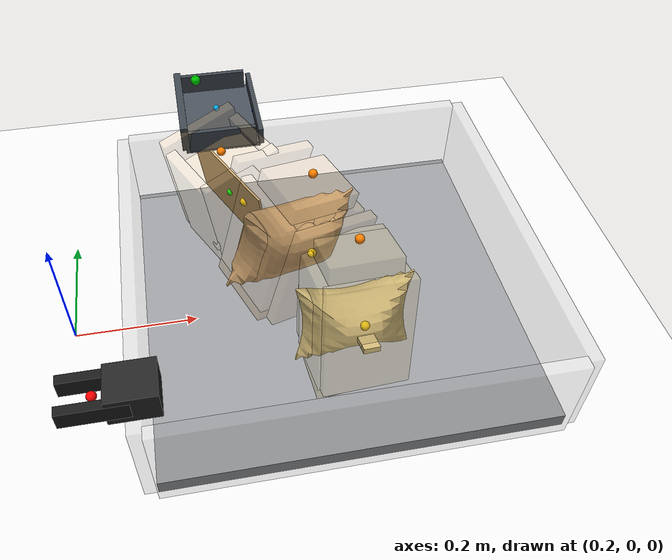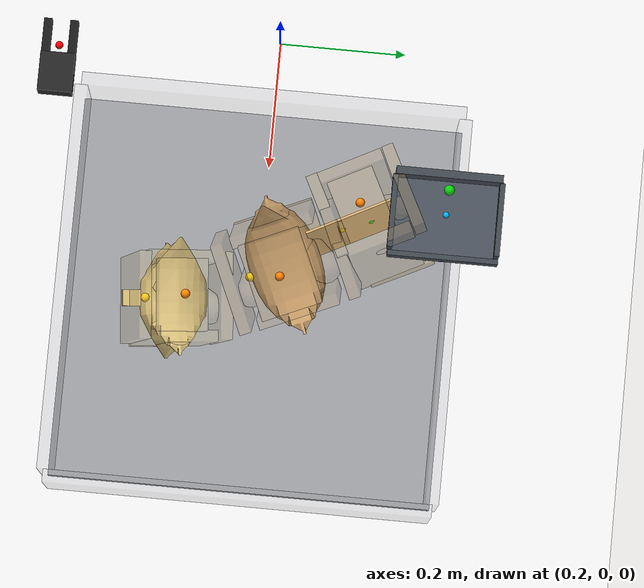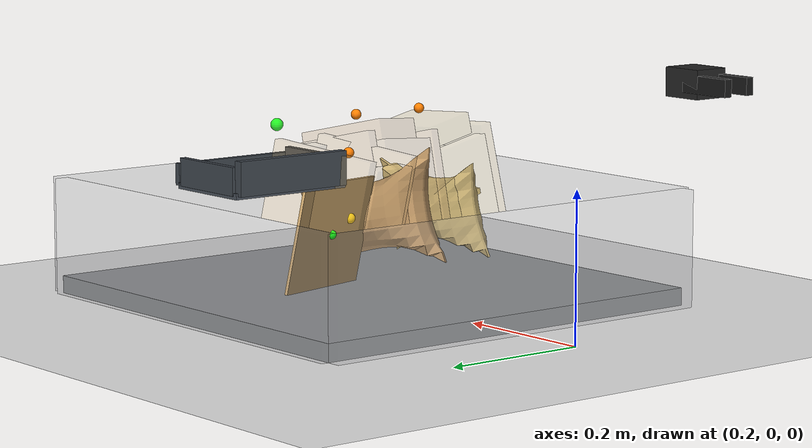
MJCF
<mujoco model="regular_well_filled_side_exposed_ep0_try0">
  <compiler angle="radian" coordinate="local" inertiafromgeom="true" meshdir="D:/Michael/2025/01.Research/01.Parceldetection/16.Pybullet/bullet3-master (1)/bullet3-master/examples/pybullet/examples/DeformableTest/Sackcodex2/object"/>
  <option timestep="0.002" gravity="0 0 -9.81" integrator="implicitfast" iterations="100" tolerance="1e-8"/>
  <size memory="768M" nconmax="12000"/>

  <visual>
    <global azimuth="128" elevation="-20"/>
    <headlight ambient="0.34 0.34 0.34" diffuse="0.78 0.78 0.78" specular="0.15 0.15 0.15"/>
    <rgba haze="0.11 0.13 0.18 1"/>
  </visual>

  <default>
    <geom condim="4" friction="1.15 0.03 0.01" margin="0.003" solimp="0.93 0.98 0.003" solref="0.012 1"/>
    <joint damping="1.2" armature="0.002"/>
    <position kp="2500" forcelimited="true" forcerange="-420 420"/>
    <motor ctrllimited="true"/>
  </default>

  <asset>
    <mesh name="sack_0_visual_mesh" file="sack9.obj" scale="0.0664 0.0664 0.0699"/>
    <mesh name="sack_1_visual_mesh" file="sack6Apply.obj" scale="0.0768 0.0768 0.0818"/>
    <mesh name="sack_2_visual_mesh" file="sack2.obj" scale="0.0694 0.0694 0.0707"/>
  </asset>

  <worldbody>
    <light name="key" pos="0.85 0.15 1.8" dir="-0.2 -0.1 -1" directional="true"/>
    <geom name="floor" type="plane" size="2 2 0.1" rgba="0.93 0.93 0.93 1"/>
    <geom name="work_pad" type="box" pos="0.62 0 0.012" size="0.30 0.30 0.012" rgba="0.60 0.61 0.62 1" friction="1.4 0.05 0.01"/>
    <geom name="corral_front" type="box" pos="0.93 0.00 0.08" size="0.010 0.30 0.08" rgba="0.55 0.55 0.58 0.22" friction="1.0 0.03 0.01"/>
    <geom name="corral_back" type="box" pos="0.31 0.00 0.08" size="0.010 0.30 0.08" rgba="0.55 0.55 0.58 0.18" friction="1.0 0.03 0.01"/>
    <geom name="corral_left" type="box" pos="0.62 0.30 0.08" size="0.30 0.010 0.08" rgba="0.55 0.55 0.58 0.14" friction="1.0 0.03 0.01"/>
    <geom name="corral_right" type="box" pos="0.62 -0.30 0.08" size="0.30 0.010 0.08" rgba="0.55 0.55 0.58 0.14" friction="1.0 0.03 0.01"/>
    <camera name="overview" pos="1.22 0.00 0.92" xyaxes="0 1 0 -0.46 0 0.88"/>

    <body name="gripper_mocap" mocap="true" pos="0.36 -0.33 0.30" quat="0.707107 0 -0.707107 0"/>
    <body name="scoop_mocap" mocap="true" pos="0.42 0.28 0.20" quat="1 0 0 0"/>

    <body name="gripper_ctrl_base" pos="0.36 -0.33 0.30">
      <inertial pos="0 0 0" mass="0.001" diaginertia="1e-6 1e-6 1e-6"/>
      <joint name="gripper_ctrl_x" type="slide" axis="1 0 0" limited="true" range="0.20 1.00"/>
      <body name="gripper_ctrl_y_body">
        <inertial pos="0 0 0" mass="0.001" diaginertia="1e-6 1e-6 1e-6"/>
        <joint name="gripper_ctrl_y" type="slide" axis="0 1 0" limited="true" range="-0.60 0.60"/>
        <body name="gripper_ctrl_z_body">
          <inertial pos="0 0 0" mass="0.001" diaginertia="1e-6 1e-6 1e-6"/>
          <joint name="gripper_ctrl_z" type="slide" axis="0 0 1" limited="true" range="0.04 0.70"/>
          <body name="gripper_ctrl_yaw_body">
            <inertial pos="0 0 0" mass="0.001" diaginertia="1e-6 1e-6 1e-6"/>
            <joint name="gripper_ctrl_yaw" type="hinge" axis="0 0 1" limited="true" range="-3.1416 3.1416"/>
            <body name="gripper_ctrl_pitch_body">
              <inertial pos="0 0 0" mass="0.001" diaginertia="1e-6 1e-6 1e-6"/>
              <joint name="gripper_ctrl_pitch" type="hinge" axis="0 1 0" limited="true" range="-3.1416 3.1416"/>
              <body name="gripper_ctrl_roll_body">
                <inertial pos="0 0 0" mass="0.001" diaginertia="1e-6 1e-6 1e-6"/>
                <joint name="gripper_ctrl_roll" type="hinge" axis="1 0 0" limited="true" range="-3.1416 3.1416"/>
              </body>
            </body>
          </body>
        </body>
      </body>
    </body>

    <body name="scoop_ctrl_base" pos="0.42 0.28 0.20">
      <inertial pos="0 0 0" mass="0.001" diaginertia="1e-6 1e-6 1e-6"/>
      <joint name="scoop_ctrl_x" type="slide" axis="1 0 0" limited="true" range="0.20 1.00"/>
      <body name="scoop_ctrl_y_body">
        <inertial pos="0 0 0" mass="0.001" diaginertia="1e-6 1e-6 1e-6"/>
        <joint name="scoop_ctrl_y" type="slide" axis="0 1 0" limited="true" range="-0.60 0.60"/>
        <body name="scoop_ctrl_z_body">
          <inertial pos="0 0 0" mass="0.001" diaginertia="1e-6 1e-6 1e-6"/>
          <joint name="scoop_ctrl_z" type="slide" axis="0 0 1" limited="true" range="0.04 0.70"/>
          <body name="scoop_ctrl_yaw_body">
            <inertial pos="0 0 0" mass="0.001" diaginertia="1e-6 1e-6 1e-6"/>
            <joint name="scoop_ctrl_yaw" type="hinge" axis="0 0 1" limited="true" range="-3.1416 3.1416"/>
            <body name="scoop_ctrl_pitch_body">
              <inertial pos="0 0 0" mass="0.001" diaginertia="1e-6 1e-6 1e-6"/>
              <joint name="scoop_ctrl_pitch" type="hinge" axis="0 1 0" limited="true" range="-3.1416 3.1416"/>
              <body name="scoop_ctrl_roll_body">
                <inertial pos="0 0 0" mass="0.001" diaginertia="1e-6 1e-6 1e-6"/>
                <joint name="scoop_ctrl_roll" type="hinge" axis="1 0 0" limited="true" range="-3.1416 3.1416"/>
              </body>
            </body>
          </body>
        </body>
      </body>
    </body>

    <body name="gripper_tool" pos="0.36 -0.33 0.30" quat="0.707107 0 -0.707107 0">
      <freejoint name="gripper_tool_free"/>
      <inertial pos="0 0 0.04" mass="0.08" diaginertia="0.0002 0.0002 0.0002"/>
      <geom name="gripper_palm" type="box" pos="0 0 0.030" size="0.020 0.026 0.030" rgba="0.14 0.14 0.14 1"/>
      <body name="left_finger_body" pos="0 0 0.072">
        <joint name="left_finger_slide" type="slide" axis="0 1 0" limited="true" range="0.010 0.040" damping="12"/>
        <geom name="left_finger_geom" type="box" pos="0 0.020 0" size="0.012 0.006 0.040" rgba="0.10 0.10 0.10 1" friction="2.2 0.05 0.01"/>
      </body>
      <body name="right_finger_body" pos="0 0 0.072">
        <joint name="right_finger_slide" type="slide" axis="0 -1 0" limited="true" range="0.010 0.040" damping="12"/>
        <geom name="right_finger_geom" type="box" pos="0 -0.020 0" size="0.012 0.006 0.040" rgba="0.10 0.10 0.10 1" friction="2.2 0.05 0.01"/>
      </body>
      <site name="gripper_pinch_site" pos="0 0 0.074" size="0.006" rgba="1 0 0 1"/>
    </body>

    <body name="scoop_tool" pos="0.42 0.28 0.20" quat="1 0 0 0">
      <freejoint name="scoop_tool_free"/>
      <inertial pos="0 0 0.02" mass="0.10" diaginertia="0.0003 0.0003 0.0003"/>
      <geom name="scoop_plate" type="box" pos="0.062 0 0" size="0.062 0.085 0.004" rgba="0.28 0.31 0.35 1" friction="1.7 0.05 0.01"/>
      <geom name="scoop_lip" type="box" pos="0.126 0 0.014" size="0.004 0.085 0.014" rgba="0.24 0.27 0.30 1" friction="1.7 0.05 0.01"/>
      <geom name="scoop_left_rail" type="box" pos="0.062 0.082 0.018" size="0.056 0.004 0.018" rgba="0.24 0.27 0.30 1"/>
      <geom name="scoop_right_rail" type="box" pos="0.062 -0.082 0.018" size="0.056 0.004 0.018" rgba="0.24 0.27 0.30 1"/>
      <geom name="scoop_backstop" type="box" pos="0.000 0 0.022" size="0.006 0.082 0.022" rgba="0.24 0.27 0.30 1"/>
      <site name="scoop_tip_site" pos="0.126 0 0.005" size="0.005" rgba="0 0 1 1"/>
      <site name="scoop_center_site" pos="0.060 0 0.020" size="0.005" rgba="0 0.7 1 1"/>
      <site name="score_overlay_site" pos="0.030 0 0.080" size="0.008" rgba="0 1 0 0.8"/>
    </body>

    <body name="sack_0" pos="0.6346 -0.1266 0.1124" euler="-0.1973 0.0423 0.0974">
      <freejoint name="sack_0_free"/>

      <geom name="sack_0_visual" type="mesh" mesh="sack_0_visual_mesh" rgba="0.840 0.740 0.480 0.92" contype="0" conaffinity="0"/>
      <site name="sack_0_center_site" pos="0 0 0.000" size="0.006" rgba="0 1 0 1"/>
      <site name="sack_0_top_site" pos="0 -0.0060 0.1414" size="0.007" rgba="1 0.5 0 1"/>
      <site name="sack_0_side_site" pos="0.0000 -0.0477 0.018" size="0.007" rgba="1 0.8 0 1"/>

      <geom name="sack_0_core_geom" type="ellipsoid" pos="0 0 0.0059" size="0.0497 0.0411 0.0877" mass="1.2055" rgba="0.840 0.740 0.480 0.12" friction="1.0 0.03 0.01"/>
      <geom name="sack_0_core_front" type="capsule" fromto="-0.0200 0 -0.0200 0.0450 0 0.0600" size="0.0304" mass="0.2870" rgba="0.840 0.740 0.480 0.10"/>
      <geom name="sack_0_core_left" type="capsule" fromto="-0.008 0.0276 -0.010 0.018 0.0456 0.060" size="0.0241" mass="0.5166" rgba="0.840 0.740 0.480 0.10"/>
      <geom name="sack_0_core_right" type="capsule" fromto="-0.006 -0.0276 -0.008 0.020 -0.0476 0.054" size="0.0221" mass="0.5166" rgba="0.840 0.740 0.480 0.10"/>

      <body name="sack_0_bottom_support_proxy_body" pos="0 -0.0007 -0.0973">
        <joint name="sack_0_bottom_x" type="slide" axis="1 0 0" limited="true" range="-0.012 0.012" damping="18" stiffness="472.2"/>
        <joint name="sack_0_bottom_y" type="slide" axis="0 1 0" limited="true" range="-0.012 0.012" damping="18" stiffness="472.2"/>
        <joint name="sack_0_bottom_z" type="slide" axis="0 0 1" limited="true" range="-0.008 0.020" damping="24" stiffness="581.5"/>
        <geom name="sack_0_bottom_support_proxy" type="box" size="0.0713 0.0537 0.0100" mass="0.2296" rgba="0.840 0.740 0.480 0.34" friction="1.55 0.05 0.01"/>
      </body>

      <body name="sack_0_top_grasp_proxy_body" pos="0.0000 -0.0060 0.1114">
        <joint name="sack_0_top_x" type="slide" axis="1 0 0" limited="true" range="-0.018 0.018" damping="12" stiffness="181.4"/>
        <joint name="sack_0_top_y" type="slide" axis="0 1 0" limited="true" range="-0.018 0.018" damping="12" stiffness="181.4"/>
        <joint name="sack_0_top_z" type="slide" axis="0 0 1" limited="true" range="-0.040 0.010" damping="14" stiffness="134.1"/>
        <geom name="sack_0_top_grasp_proxy" type="box" size="0.0553 0.0377 0.0150" mass="0.1722" rgba="0.840 0.740 0.480 0.26" friction="2.2 0.05 0.01"/>
      </body>

      <body name="sack_0_left_side_proxy_body" pos="0 0.0653 0.010">
        <joint name="sack_0_left_side_slide" type="slide" axis="0 -1 0" limited="true" range="-0.028 0.016" damping="16" stiffness="237.8"/>
        <geom name="sack_0_left_side_proxy" type="box" size="0.0673 0.0090 0.0953" mass="0.1722" rgba="0.840 0.740 0.480 0.24"/>
      </body>

      <body name="sack_0_right_side_proxy_body" pos="0 -0.0613 0.010">
        <joint name="sack_0_right_side_slide" type="slide" axis="0 1 0" limited="true" range="-0.028 0.016" damping="16" stiffness="220.5"/>
        <geom name="sack_0_right_side_proxy" type="box" size="0.0673 0.0090 0.0953" mass="0.1722" rgba="0.840 0.740 0.480 0.24"/>
      </body>

      <body name="sack_0_front_proxy_body" pos="0.0613 0 0.000">
        <joint name="sack_0_front_slide" type="slide" axis="-1 0 0" limited="true" range="-0.022 0.012" damping="15" stiffness="226.1"/>
        <geom name="sack_0_front_support_proxy" type="box" size="0.0090 0.0537 0.0933" mass="0.1435" rgba="0.840 0.740 0.480 0.22"/>
      </body>

      <body name="sack_0_back_proxy_body" pos="-0.0613 0 0.000">
        <joint name="sack_0_back_slide" type="slide" axis="1 0 0" limited="true" range="-0.022 0.012" damping="15" stiffness="208.7"/>
        <geom name="sack_0_back_support_proxy" type="box" size="0.0090 0.0537 0.0933" mass="0.1435" rgba="0.840 0.740 0.480 0.22"/>
      </body>

      <body name="sack_0_shape_proxy_body" pos="0.0000 -0.0196 0.0359">
        <joint name="sack_0_bulge_y" type="slide" axis="0 1 0" limited="true" range="-0.020 0.020" damping="8" stiffness="91.9"/>
        <joint name="sack_0_bulge_z" type="slide" axis="0 0 1" limited="true" range="-0.014 0.028" damping="8" stiffness="93.9"/>
        <geom name="sack_0_shape_proxy" type="ellipsoid" size="0.0201 0.0162 0.0261" mass="0.1148" rgba="0.840 0.740 0.480 0.28"/>
      </body>
    </body>

    <body name="sack_1" pos="0.5661 0.0423 0.1248" euler="0.0104 0.2475 0.4091">
      <freejoint name="sack_1_free"/>

      <geom name="sack_1_visual" type="mesh" mesh="sack_1_visual_mesh" rgba="0.760 0.600 0.400 0.92" contype="0" conaffinity="0"/>
      <site name="sack_1_center_site" pos="0 0 0.000" size="0.006" rgba="0 1 0 1"/>
      <site name="sack_1_top_site" pos="0 -0.0060 0.1383" size="0.007" rgba="1 0.5 0 1"/>
      <site name="sack_1_side_site" pos="0.0000 -0.0582 0.018" size="0.007" rgba="1 0.8 0 1"/>

      <geom name="sack_1_core_geom" type="ellipsoid" pos="0 0 0.0059" size="0.0450 0.0354 0.0792" mass="0.8047" rgba="0.760 0.600 0.400 0.12" friction="1.0 0.03 0.01"/>
      <geom name="sack_1_core_front" type="capsule" fromto="-0.0200 0 -0.0200 0.0450 0 0.0600" size="0.0308" mass="0.1916" rgba="0.760 0.600 0.400 0.10"/>
      <geom name="sack_1_core_left" type="capsule" fromto="-0.008 0.0420 -0.010 0.018 0.0600 0.060" size="0.0242" mass="0.3449" rgba="0.760 0.600 0.400 0.10"/>
      <geom name="sack_1_core_right" type="capsule" fromto="-0.006 -0.0420 -0.008 0.020 -0.0620 0.054" size="0.0223" mass="0.3449" rgba="0.760 0.600 0.400 0.10"/>

      <body name="sack_1_bottom_support_proxy_body" pos="0 -0.0004 -0.0980">
        <joint name="sack_1_bottom_x" type="slide" axis="1 0 0" limited="true" range="-0.012 0.012" damping="18" stiffness="484.1"/>
        <joint name="sack_1_bottom_y" type="slide" axis="0 1 0" limited="true" range="-0.012 0.012" damping="18" stiffness="484.1"/>
        <joint name="sack_1_bottom_z" type="slide" axis="0 0 1" limited="true" range="-0.008 0.020" damping="24" stiffness="596.1"/>
        <geom name="sack_1_bottom_support_proxy" type="box" size="0.0758 0.0642 0.0100" mass="0.1533" rgba="0.760 0.600 0.400 0.34" friction="1.55 0.05 0.01"/>
      </body>

      <body name="sack_1_top_grasp_proxy_body" pos="0.0000 -0.0060 0.1083">
        <joint name="sack_1_top_x" type="slide" axis="1 0 0" limited="true" range="-0.018 0.018" damping="12" stiffness="186.0"/>
        <joint name="sack_1_top_y" type="slide" axis="0 1 0" limited="true" range="-0.018 0.018" damping="12" stiffness="186.0"/>
        <joint name="sack_1_top_z" type="slide" axis="0 0 1" limited="true" range="-0.040 0.010" damping="14" stiffness="138.0"/>
        <geom name="sack_1_top_grasp_proxy" type="box" size="0.0598 0.0482 0.0150" mass="0.1150" rgba="0.760 0.600 0.400 0.26" friction="2.2 0.05 0.01"/>
      </body>

      <body name="sack_1_left_side_proxy_body" pos="0 0.0902 0.010">
        <joint name="sack_1_left_side_slide" type="slide" axis="0 -1 0" limited="true" range="-0.028 0.016" damping="16" stiffness="245.6"/>
        <geom name="sack_1_left_side_proxy" type="box" size="0.0718 0.0090 0.0960" mass="0.1150" rgba="0.760 0.600 0.400 0.24"/>
      </body>

      <body name="sack_1_right_side_proxy_body" pos="0 -0.0862 0.010">
        <joint name="sack_1_right_side_slide" type="slide" axis="0 1 0" limited="true" range="-0.028 0.016" damping="16" stiffness="227.6"/>
        <geom name="sack_1_right_side_proxy" type="box" size="0.0718 0.0090 0.0960" mass="0.1150" rgba="0.760 0.600 0.400 0.24"/>
      </body>

      <body name="sack_1_front_proxy_body" pos="0.0658 0 0.000">
        <joint name="sack_1_front_slide" type="slide" axis="-1 0 0" limited="true" range="-0.022 0.012" damping="15" stiffness="232.0"/>
        <geom name="sack_1_front_support_proxy" type="box" size="0.0090 0.0642 0.0940" mass="0.0958" rgba="0.760 0.600 0.400 0.22"/>
      </body>

      <body name="sack_1_back_proxy_body" pos="-0.0658 0 0.000">
        <joint name="sack_1_back_slide" type="slide" axis="1 0 0" limited="true" range="-0.022 0.012" damping="15" stiffness="214.0"/>
        <geom name="sack_1_back_support_proxy" type="box" size="0.0090 0.0642 0.0940" mass="0.0958" rgba="0.760 0.600 0.400 0.22"/>
      </body>

      <body name="sack_1_shape_proxy_body" pos="0.0000 -0.0340 0.0320">
        <joint name="sack_1_bulge_y" type="slide" axis="0 1 0" limited="true" range="-0.020 0.020" damping="8" stiffness="83.9"/>
        <joint name="sack_1_bulge_z" type="slide" axis="0 0 1" limited="true" range="-0.014 0.028" damping="8" stiffness="88.0"/>
        <geom name="sack_1_shape_proxy" type="ellipsoid" size="0.0202 0.0164 0.0261" mass="0.0766" rgba="0.760 0.600 0.400 0.28"/>
      </body>
    </body>

    <body name="sack_2" pos="0.4847 0.1673 0.1241" euler="0.1350 -0.1193 0.4654">
      <freejoint name="sack_2_free"/>

      <geom name="sack_2_visual" type="mesh" mesh="sack_2_visual_mesh" rgba="0.820 0.670 0.440 0.92" contype="0" conaffinity="0"/>
      <site name="sack_2_center_site" pos="0 0 0.000" size="0.006" rgba="0 1 0 1"/>
      <site name="sack_2_top_site" pos="0 -0.0060 0.1082" size="0.007" rgba="1 0.5 0 1"/>
      <site name="sack_2_side_site" pos="0.0000 -0.0471 0.018" size="0.007" rgba="1 0.8 0 1"/>

      <geom name="sack_2_core_geom" type="ellipsoid" pos="0 0 0.0058" size="0.0448 0.0346 0.0664" mass="0.7108" rgba="0.820 0.670 0.440 0.12" friction="1.0 0.03 0.01"/>
      <geom name="sack_2_core_front" type="capsule" fromto="-0.0200 0 -0.0200 0.0450 0 0.0600" size="0.0293" mass="0.1692" rgba="0.820 0.670 0.440 0.10"/>
      <geom name="sack_2_core_left" type="capsule" fromto="-0.008 0.0274 -0.010 0.018 0.0454 0.060" size="0.0241" mass="0.3046" rgba="0.820 0.670 0.440 0.10"/>
      <geom name="sack_2_core_right" type="capsule" fromto="-0.006 -0.0274 -0.008 0.020 -0.0474 0.054" size="0.0221" mass="0.3046" rgba="0.820 0.670 0.440 0.10"/>

      <body name="sack_2_bottom_support_proxy_body" pos="0 0.0156 -0.1072">
        <joint name="sack_2_bottom_x" type="slide" axis="1 0 0" limited="true" range="-0.012 0.012" damping="18" stiffness="438.8"/>
        <joint name="sack_2_bottom_y" type="slide" axis="0 1 0" limited="true" range="-0.012 0.012" damping="18" stiffness="438.8"/>
        <joint name="sack_2_bottom_z" type="slide" axis="0 0 1" limited="true" range="-0.008 0.020" damping="24" stiffness="540.8"/>
        <geom name="sack_2_bottom_support_proxy" type="box" size="0.0723 0.0531 0.0100" mass="0.1354" rgba="0.820 0.670 0.440 0.34" friction="1.55 0.05 0.01"/>
      </body>

      <body name="sack_2_top_grasp_proxy_body" pos="0.0000 -0.0060 0.0782">
        <joint name="sack_2_top_x" type="slide" axis="1 0 0" limited="true" range="-0.018 0.018" damping="12" stiffness="168.4"/>
        <joint name="sack_2_top_y" type="slide" axis="0 1 0" limited="true" range="-0.018 0.018" damping="12" stiffness="168.4"/>
        <joint name="sack_2_top_z" type="slide" axis="0 0 1" limited="true" range="-0.040 0.010" damping="14" stiffness="122.9"/>
        <geom name="sack_2_top_grasp_proxy" type="box" size="0.0563 0.0371 0.0150" mass="0.1015" rgba="0.820 0.670 0.440 0.26" friction="2.2 0.05 0.01"/>
      </body>

      <body name="sack_2_left_side_proxy_body" pos="0 0.0645 0.010">
        <joint name="sack_2_left_side_slide" type="slide" axis="0 -1 0" limited="true" range="-0.028 0.016" damping="16" stiffness="215.1"/>
        <geom name="sack_2_left_side_proxy" type="box" size="0.0683 0.0090 0.1052" mass="0.1015" rgba="0.820 0.670 0.440 0.24"/>
      </body>

      <body name="sack_2_right_side_proxy_body" pos="0 -0.0605 0.010">
        <joint name="sack_2_right_side_slide" type="slide" axis="0 1 0" limited="true" range="-0.028 0.016" damping="16" stiffness="199.6"/>
        <geom name="sack_2_right_side_proxy" type="box" size="0.0683 0.0090 0.1052" mass="0.1015" rgba="0.820 0.670 0.440 0.24"/>
      </body>

      <body name="sack_2_front_proxy_body" pos="0.0623 0 0.000">
        <joint name="sack_2_front_slide" type="slide" axis="-1 0 0" limited="true" range="-0.022 0.012" damping="15" stiffness="209.4"/>
        <geom name="sack_2_front_support_proxy" type="box" size="0.0090 0.0531 0.1032" mass="0.0846" rgba="0.820 0.670 0.440 0.22"/>
      </body>

      <body name="sack_2_back_proxy_body" pos="-0.0623 0 0.000">
        <joint name="sack_2_back_slide" type="slide" axis="1 0 0" limited="true" range="-0.022 0.012" damping="15" stiffness="193.9"/>
        <geom name="sack_2_back_support_proxy" type="box" size="0.0090 0.0531 0.1032" mass="0.0846" rgba="0.820 0.670 0.440 0.22"/>
      </body>

      <body name="sack_2_shape_proxy_body" pos="0.0000 -0.0194 0.0471">
        <joint name="sack_2_bulge_y" type="slide" axis="0 1 0" limited="true" range="-0.020 0.020" damping="8" stiffness="114.1"/>
        <joint name="sack_2_bulge_z" type="slide" axis="0 0 1" limited="true" range="-0.014 0.028" damping="8" stiffness="110.6"/>
        <geom name="sack_2_shape_proxy" type="ellipsoid" size="0.0201 0.0161 0.0262" mass="0.0677" rgba="0.820 0.670 0.440 0.28"/>
      </body>
    </body>
  </worldbody>

  <equality>
    <weld name="gripper_follow" body1="gripper_mocap" body2="gripper_tool" torquescale="400" solref="0.002 1" solimp="0.99 0.999 0.0001"/>
    <weld name="scoop_follow" body1="scoop_mocap" body2="scoop_tool" torquescale="500" solref="0.002 1" solimp="0.99 0.999 0.0001"/>
  </equality>

  <actuator>
    <position name="gripper_ctrl_x_act" joint="gripper_ctrl_x" ctrlrange="0.20 1.00" kp="3500" forcerange="-300 300"/>
    <position name="gripper_ctrl_y_act" joint="gripper_ctrl_y" ctrlrange="-0.60 0.60" kp="3500" forcerange="-300 300"/>
    <position name="gripper_ctrl_z_act" joint="gripper_ctrl_z" ctrlrange="0.04 0.70" kp="3500" forcerange="-300 300"/>
    <position name="gripper_ctrl_yaw_act" joint="gripper_ctrl_yaw" ctrlrange="-3.1416 3.1416" kp="1800" forcerange="-250 250"/>
    <position name="gripper_ctrl_pitch_act" joint="gripper_ctrl_pitch" ctrlrange="-3.1416 3.1416" kp="1800" forcerange="-250 250"/>
    <position name="gripper_ctrl_roll_act" joint="gripper_ctrl_roll" ctrlrange="-3.1416 3.1416" kp="1800" forcerange="-250 250"/>
    <position name="scoop_ctrl_x_act" joint="scoop_ctrl_x" ctrlrange="0.20 1.00" kp="3500" forcerange="-300 300"/>
    <position name="scoop_ctrl_y_act" joint="scoop_ctrl_y" ctrlrange="-0.60 0.60" kp="3500" forcerange="-300 300"/>
    <position name="scoop_ctrl_z_act" joint="scoop_ctrl_z" ctrlrange="0.04 0.70" kp="3500" forcerange="-300 300"/>
    <position name="scoop_ctrl_yaw_act" joint="scoop_ctrl_yaw" ctrlrange="-3.1416 3.1416" kp="1800" forcerange="-250 250"/>
    <position name="scoop_ctrl_pitch_act" joint="scoop_ctrl_pitch" ctrlrange="-3.1416 3.1416" kp="1800" forcerange="-250 250"/>
    <position name="scoop_ctrl_roll_act" joint="scoop_ctrl_roll" ctrlrange="-3.1416 3.1416" kp="1800" forcerange="-250 250"/>
    <position name="left_finger_act" joint="left_finger_slide" ctrlrange="0.010 0.040" kp="2800" forcerange="-220 220"/>
    <position name="right_finger_act" joint="right_finger_slide" ctrlrange="0.010 0.040" kp="2800" forcerange="-220 220"/>
  </actuator>

  <contact>
    <exclude body1="sack_0_top_grasp_proxy_body" body2="sack_0_left_side_proxy_body"/>
    <exclude body1="sack_0_top_grasp_proxy_body" body2="sack_0_right_side_proxy_body"/>
    <exclude body1="sack_1_top_grasp_proxy_body" body2="sack_1_left_side_proxy_body"/>
    <exclude body1="sack_1_top_grasp_proxy_body" body2="sack_1_right_side_proxy_body"/>
    <exclude body1="sack_2_top_grasp_proxy_body" body2="sack_2_left_side_proxy_body"/>
    <exclude body1="sack_2_top_grasp_proxy_body" body2="sack_2_right_side_proxy_body"/>
  </contact>
</mujoco>
